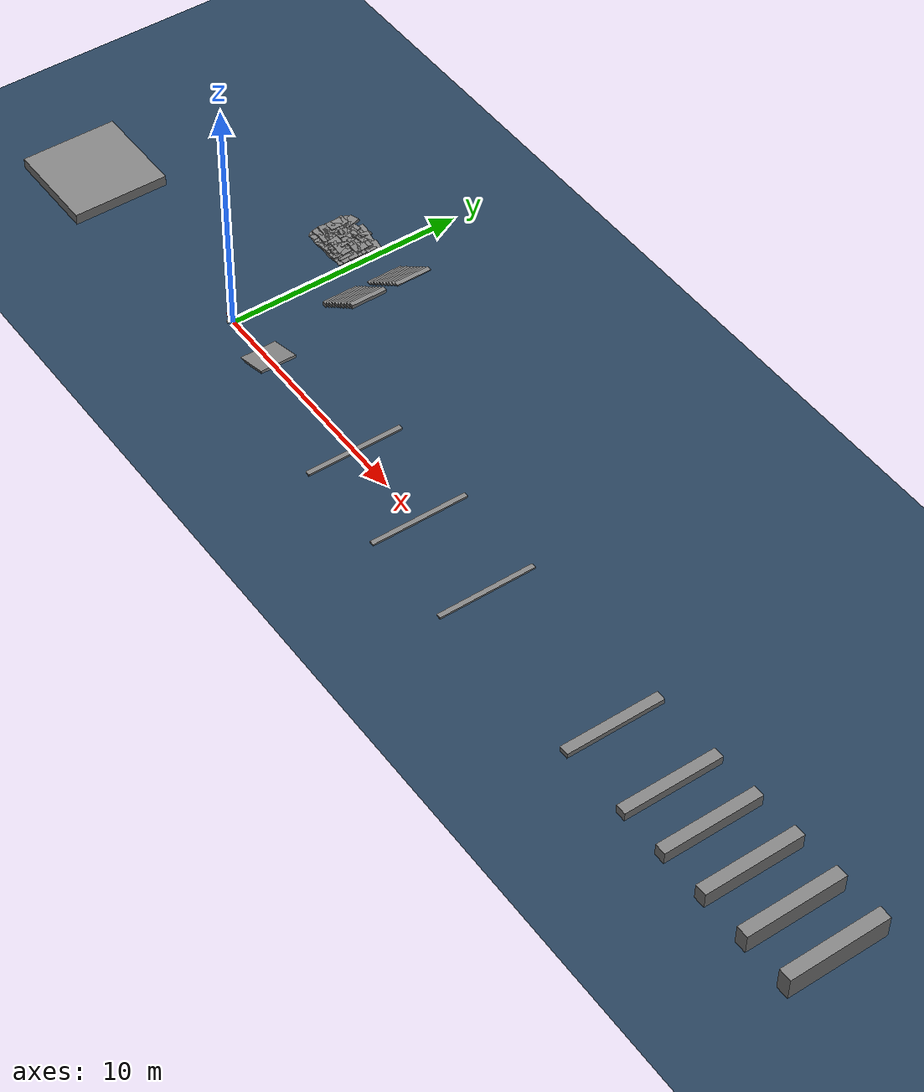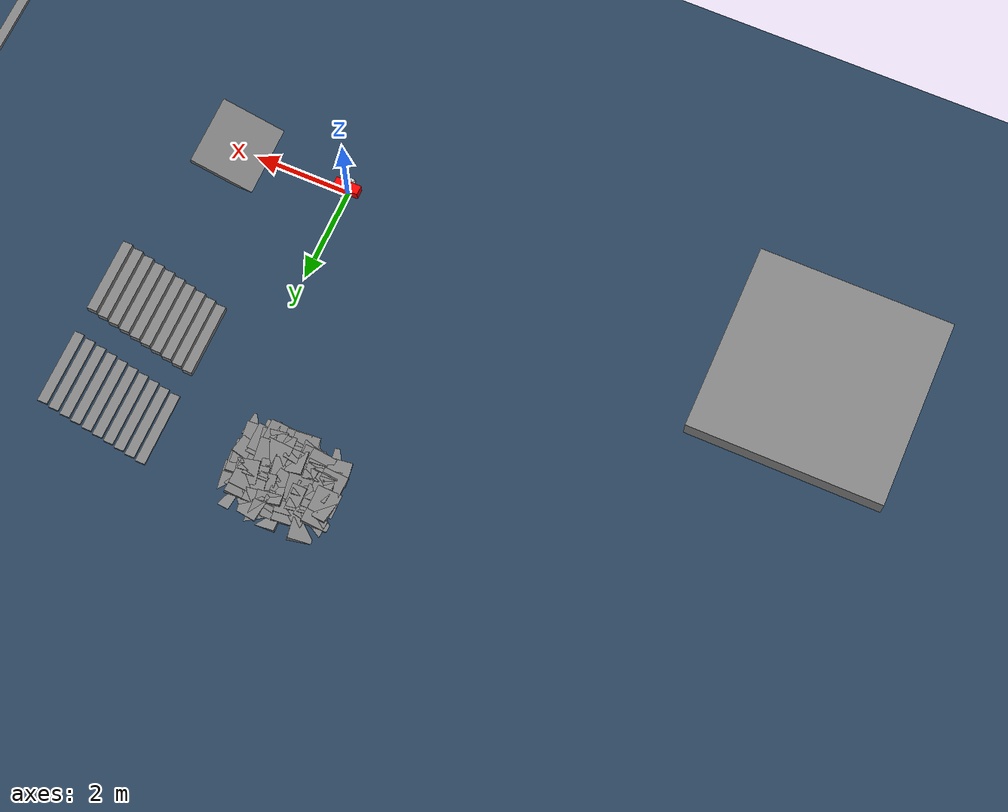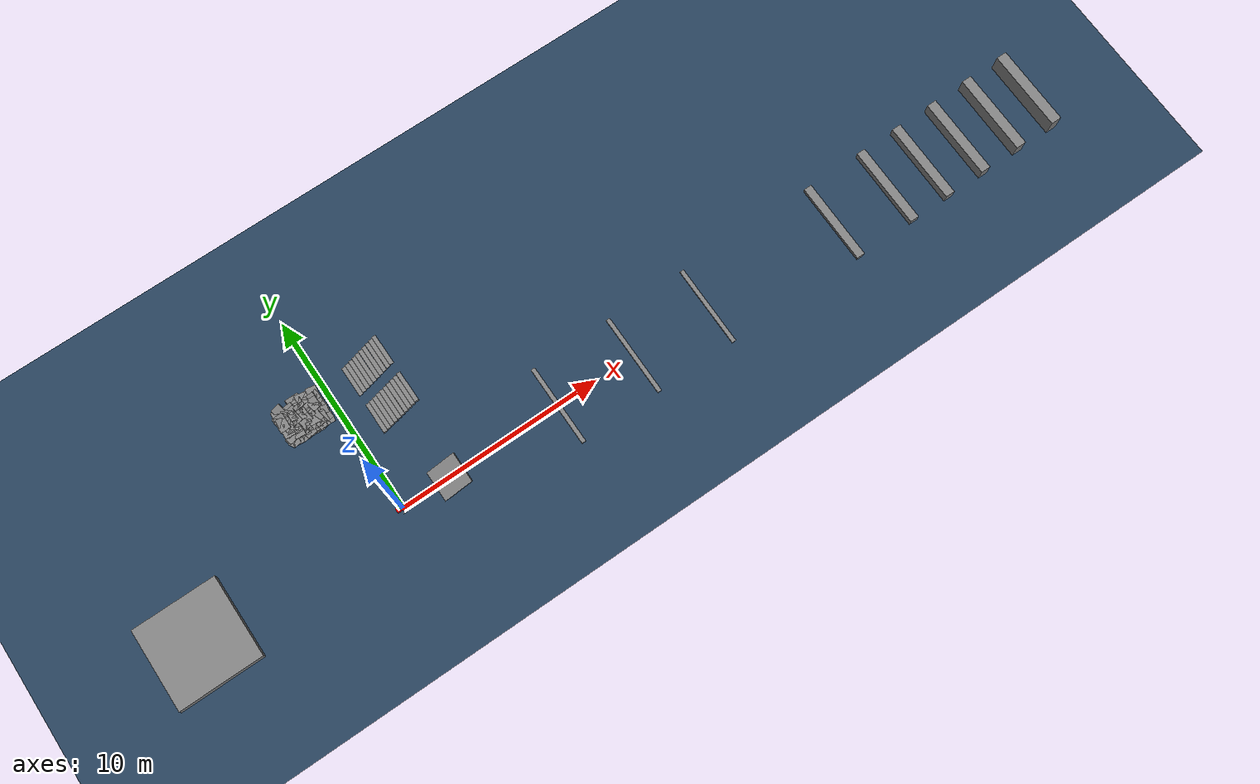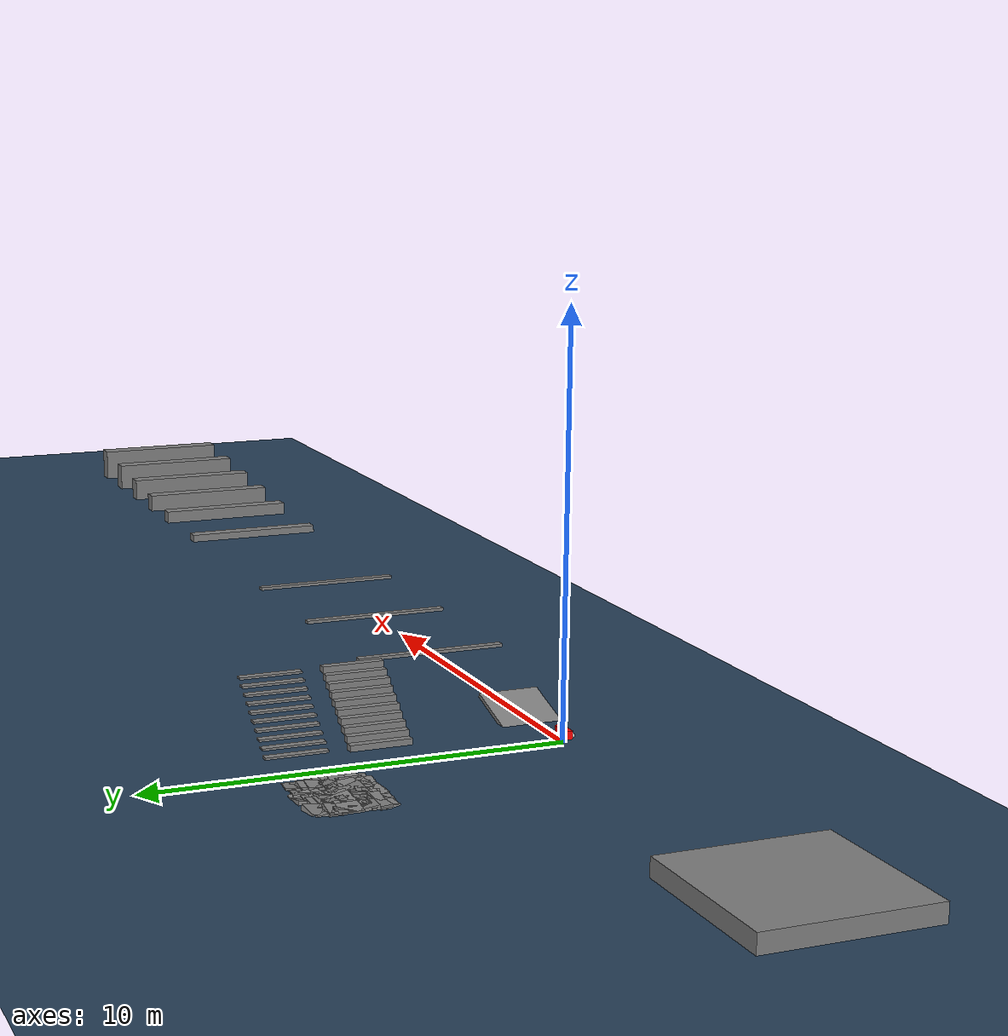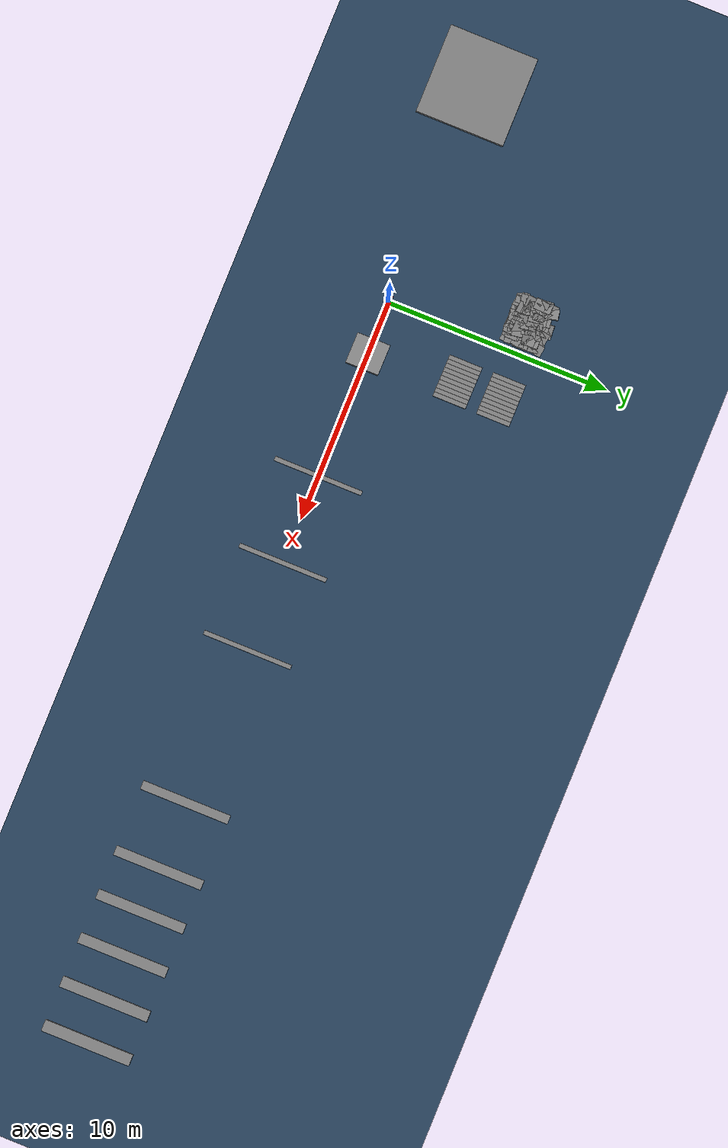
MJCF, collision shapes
<mujoco model="Infantry_wheelLegged scene">
  <include file="zt_2025_Infantry_wheelLeggedP_withShoot_s.xml" />

  <statistic center="0 0 0.4" extent="0.8" />

  <visual>
    <headlight diffuse="0.6 0.6 0.6" ambient="0.3 0.3 0.3" specular="0 0 0" />
    <rgba haze="0.15 0.25 0.35 1" />
    <global azimuth="-130" elevation="-20" />
  </visual>

  <asset>
    <texture type="skybox" builtin="gradient" rgb1="0.3 0.5 0.7" rgb2="0 0 0" width="512" height="3072" />
    <texture type="2d" name="groundplane" builtin="checker" mark="edge" rgb1="0.2 0.3 0.4" rgb2="0.1 0.2 0.3" markrgb="0.8 0.8 0.8" width="300" height="300" />
    <material name="groundplane" texture="groundplane" texuniform="true" texrepeat="5 5" reflectance="0.2" />
  </asset>

  <worldbody>
    <light pos="0 0 1.5" dir="0 0 -1" directional="true" />
    <geom name="floor" size="0 0 0.05" type="plane" material="groundplane" />

    <geom pos="-10 0 0.0" type="box" size="2 2 0.4" quat="1.0 0 0 0" />

    <geom pos="8 0 0.04" type="box" size="0.1 2 0.04" quat="1.0 0 0 0" />
    <geom pos="12 0 0.04" type="box" size="0.1 2 0.04" quat="1.0 0 0 0" />
    <geom pos="16 0 0.04" type="box" size="0.1 2 0.04" quat="1.0 0 0 0" />

    <geom pos="23 0 0.02" type="box" size="0.2 2 0.15" quat="1.0 0 0 0" />
    <geom pos="26 0 0.02" type="box" size="0.22 2 0.3" quat="1.0 0 0 0" />
    <geom pos="28 0 0.02" type="box" size="0.23 2 0.45" quat="1.0 0 0 0" />
    <geom pos="30 0 0.02" type="box" size="0.24 2 0.6" quat="1.0 0 0 0" />
    <geom pos="32 0 0.02" type="box" size="0.25 2 0.75" quat="1.0 0 0 0" />
    <geom pos="34 0 0.02" type="box" size="0.26 2 0.9" quat="1.0 0 0 0" />
  <geom pos="2.0 0.0 0" type="box" size="1.145 0.75 0.05" quat="0.9890163047784168 0.0 -0.14780645751267352 0.0" /><geom pos="1.2 4.0 0.075" type="box" size="0.1 0.75 0.075" quat="1.0 0.0 0.0 0.0" /><geom pos="1.4 4.0 0.22499999999999998" type="box" size="0.1 0.75 0.075" quat="1.0 0.0 0.0 0.0" /><geom pos="1.6 4.0 0.375" type="box" size="0.1 0.75 0.075" quat="1.0 0.0 0.0 0.0" /><geom pos="1.8 4.0 0.525" type="box" size="0.1 0.75 0.075" quat="1.0 0.0 0.0 0.0" /><geom pos="2.0 4.0 0.675" type="box" size="0.1 0.75 0.075" quat="1.0 0.0 0.0 0.0" /><geom pos="2.2 4.0 0.8250000000000001" type="box" size="0.1 0.75 0.075" quat="1.0 0.0 0.0 0.0" /><geom pos="2.4 4.0 0.9750000000000001" type="box" size="0.1 0.75 0.075" quat="1.0 0.0 0.0 0.0" /><geom pos="2.5999999999999996 4.0 1.125" type="box" size="0.1 0.75 0.075" quat="1.0 0.0 0.0 0.0" /><geom pos="2.8 4.0 1.275" type="box" size="0.1 0.75 0.075" quat="1.0 0.0 0.0 0.0" /><geom pos="3.0 4.0 1.4249999999999998" type="box" size="0.1 0.75 0.075" quat="1.0 0.0 0.0 0.0" /><geom pos="1.2 6.0 0.075" type="box" size="0.1 0.75 0.024999999999999994" quat="1.0 0.0 0.0 0.0" /><geom pos="1.4 6.0 0.22499999999999998" type="box" size="0.1 0.75 0.024999999999999994" quat="1.0 0.0 0.0 0.0" /><geom pos="1.6 6.0 0.375" type="box" size="0.1 0.75 0.024999999999999994" quat="1.0 0.0 0.0 0.0" /><geom pos="1.8 6.0 0.525" type="box" size="0.1 0.75 0.024999999999999994" quat="1.0 0.0 0.0 0.0" /><geom pos="2.0 6.0 0.675" type="box" size="0.1 0.75 0.024999999999999994" quat="1.0 0.0 0.0 0.0" /><geom pos="2.2 6.0 0.8250000000000001" type="box" size="0.1 0.75 0.024999999999999994" quat="1.0 0.0 0.0 0.0" /><geom pos="2.4 6.0 0.9750000000000001" type="box" size="0.1 0.75 0.024999999999999994" quat="1.0 0.0 0.0 0.0" /><geom pos="2.5999999999999996 6.0 1.125" type="box" size="0.1 0.75 0.024999999999999994" quat="1.0 0.0 0.0 0.0" /><geom pos="2.8 6.0 1.275" type="box" size="0.1 0.75 0.024999999999999994" quat="1.0 0.0 0.0 0.0" /><geom pos="3.0 6.0 1.4249999999999998" type="box" size="0.1 0.75 0.024999999999999994" quat="1.0 0.0 0.0 0.0" /><geom pos="-2.3022868107892727 5.214704116311592 -0.25" type="box" size="0.2436719359767003 0.27069798257729677 0.22962093003257714" quat="0.9957960554795479 0.021912967232619533 -0.05143000971006149 0.07256026364105017" /><geom pos="-2.3022868107892727 5.389739566453222 -0.25" type="box" size="0.22717440492893548 0.24595836226344375 0.2651116233470606" quat="0.9975889115509706 -0.018621650974577398 -0.005923770226420375 0.06659209121085974" /><geom pos="-2.3022868107892727 5.608457977379958 -0.25" type="box" size="0.25269099608229767 0.22694426852907376 0.27043285619906704" quat="0.9971318848698699 -0.06588603125150606 0.027461592560966468 -0.025157424268022477" /><geom pos="-2.3022868107892727 5.7972223457639265 -0.25" type="box" size="0.2460854036492611 0.2634228871590128 0.2387620913336293" quat="0.995869175302315 -0.07980140692519569 0.025046046139319194 0.0353414304780276" /><geom pos="-2.3022868107892727 6.020432266086905 -0.25" type="box" size="0.24803344636154245 0.24927788285979008 0.2712257275798103" quat="0.998330428649622 -0.01822268334031966 -0.0548064646940096 -0.000735167929901443" /><geom pos="-2.3022868107892727 6.209257089229494 -0.25" type="box" size="0.25921591828431 0.22928841696307448 0.2578970463860524" quat="0.9914774127183892 0.09351470067425573 0.06428814506988152 -0.0639888680203587" /><geom pos="-2.3022868107892727 6.364596328834738 -0.25" type="box" size="0.26797749469733817 0.24228854723689547 0.2640557977430339" quat="0.9930883627085202 0.09087849238899892 -0.07422344254820175 -0.0027356992355377276" /><geom pos="-2.3022868107892727 6.55146752656225 -0.25" type="box" size="0.2540399299462072 0.2528447081414222 0.23296547111446647" quat="0.9935350329050765 -0.09278300122703159 0.04724317100933647 -0.045249705707283976" /><geom pos="-2.1326427433325112 5.175083285083329 -0.25" type="box" size="0.24309135627365003 0.23879724977772387 0.22923781566865625" quat="0.9974855859733238 0.02566880518936263 -0.01230724418254965 -0.06490107823631558" /><geom pos="-2.1326427433325112 5.342400946261966 -0.25" type="box" size="0.27335479963511256 0.22818368389158894 0.25067169022412383" quat="0.9958680853907154 0.06631784972100448 0.01870174424394689 -0.059151872927632874" /><geom pos="-2.1326427433325112 5.574016218847386 -0.25" type="box" size="0.25575810518715386 0.23130312668185954 0.22617745237115733" quat="0.9940144552733466 0.031137323360767938 0.09943146074247011 0.032849876958331255" /><geom pos="-2.1326427433325112 5.803218001588724 -0.25" type="box" size="0.26178991445181327 0.25856328925923966 0.24039223854599923" quat="0.9963545917095112 0.03525152651367172 0.06315908106293301 -0.04523038731997413" /><geom pos="-2.1326427433325112 6.043448844492559 -0.25" type="box" size="0.2558577086539286 0.24015437150687036 0.2438019439695293" quat="0.994235826850187 0.0389148869893839 -0.09205277748638581 0.038820591638590946" /><geom pos="-2.1326427433325112 6.2693532247478245 -0.25" type="box" size="0.2331623876377687 0.2703493571684743 0.24582857547734704" quat="0.9944052973639341 0.03771854317184993 -0.03841910430408794 -0.0908811779193614" /><geom pos="-2.1326427433325112 6.514624653325625 -0.25" type="box" size="0.23682604850470312 0.257827406412281 0.23367045014221655" quat="0.9960683534431894 -0.07329189562360534 0.020733627695159074 0.04523549477424386" /><geom pos="-2.1326427433325112 6.759696033573189 -0.25" type="box" size="0.23266950474095485 0.22522447423270073 0.26512717053819057" quat="0.9875036315424146 0.09308303891073243 -0.08993146369034977 0.08991361073940618" /><geom pos="-1.9114939541189981 5.175528905218334 -0.25" type="box" size="0.25323897584594424 0.2713021272834143 0.23661241315776618" quat="0.994160133028725 0.08398475907395814 -0.02989381343076991 0.06081570568663752" /><geom pos="-1.9114939541189981 5.359532812607338 -0.25" type="box" size="0.2523465596728665 0.22647647342658714 0.2719604315342494" quat="0.9973477054949024 -0.051790194826699706 -0.02087632589247477 -0.04668521265986967" /><geom pos="-1.9114939541189981 5.5583856667704685 -0.25" type="box" size="0.26224616170118037 0.22743248620704706 0.23297434796840913" quat="0.9870863653486932 0.10446761869922258 -0.07433994338245338 0.09602393870235562" /><geom pos="-1.9114939541189981 5.7365499127833575 -0.25" type="box" size="0.2518153899306264 0.2722227501745631 0.26182070710836086" quat="0.9967842971979052 0.002879042562599575 -0.027150962772361807 -0.07533658602654425" /><geom pos="-1.9114939541189981 5.8921565810610765 -0.25" type="box" size="0.2690616914288365 0.26757768614219074 0.2545904430458561" quat="0.9960766634136303 0.07757039878276568 -0.024422831529634093 0.03489468635089364" /><geom pos="-1.9114939541189981 6.050880079896679 -0.25" type="box" size="0.23972373552524812 0.2744713876401259 0.22841761816776684" quat="0.9981804918895859 -0.038150126914533455 0.011569035765126015 0.04523749372958644" /><geom pos="-1.9114939541189981 6.226732544857801 -0.25" type="box" size="0.25111170405790045 0.23097739881666093 0.23801541183344274" quat="0.9932564928022554 0.08721255985719095 0.029676160412251643 0.0703905846864899" /><geom pos="-1.9114939541189981 6.4372970608636315 -0.25" type="box" size="0.2303998708452052 0.25196288604627537 0.2612917292031033" quat="0.9994028338029951 -0.019329142560420065 0.022611897640896737 -0.01758016266987953" /><geom pos="-1.7176083305044285 5.173648156874327 -0.25" type="box" size="0.2687165814915208 0.25116793689504413 0.2442896540644933" quat="0.9964949667443296 0.025680586072249097 -0.06490429641182553 0.04610554261137495" /><geom pos="-1.7176083305044285 5.374438805115074 -0.25" type="box" size="0.24190735508676717 0.2607398861013018 0.2408673166116883" quat="0.9947614925811817 -0.041361785028689764 -0.09250675621501446 0.013463865398754295" /><geom pos="-1.7176083305044285 5.542893652693271 -0.25" type="box" size="0.2374293348622522 0.24848676805270292 0.23066793744400024" quat="0.9988561593380896 0.04749642347313668 -0.005004188384695957 -0.0023282629215683557" /><geom pos="-1.7176083305044285 5.753977049728384 -0.25" type="box" size="0.2596768707648882 0.26592355644053234 0.23600950784992336" quat="0.994717517098907 -0.03814015633187737 0.06812171569865694 -0.0666469916938259" /><geom pos="-1.7176083305044285 5.9586235407143135 -0.25" type="box" size="0.23793849235622141 0.2570801064151832 0.27101434738902386" quat="0.9925957133947109 -0.07230742298290095 -0.06477559556896578 0.07300348314089451" /><geom pos="-1.7176083305044285 6.1556777908848614 -0.25" type="box" size="0.23857607556193858 0.2601014276979313 0.2668332401838594" quat="0.9951785891607916 -0.07501801387028441 0.06148814469380205 -0.014528638374201094" /><geom pos="-1.7176083305044285 6.327825459336108 -0.25" type="box" size="0.27468201640971224 0.27079841124772946 0.22838596303364384" quat="0.9917899578334949 0.08689194696750067 -0.05367898785579767 0.07694826414941855" /><geom pos="-1.7176083305044285 6.5252119133299145 -0.25" type="box" size="0.23560272721011669 0.25093856973028217 0.2523529974216912" quat="0.9927096943000114 0.08020201550676201 -0.06557670373465473 0.06160191132366325" /><geom pos="-1.4825617994428155 5.158163375974578 -0.25" type="box" size="0.2541267237409497 0.24852161101958023 0.2542583201125818" quat="0.9955122457282654 -0.05891521612052827 -0.03527343047990172 0.06511644198447032" /><geom pos="-1.4825617994428155 5.3500445011396165 -0.25" type="box" size="0.256338172018805 0.24222685266172397 0.2665745227241127" quat="0.9956910497270048 0.04914503265572207 -0.02559760799758907 -0.07435631596310337" /><geom pos="-1.4825617994428155 5.54297871317267 -0.25" type="box" size="0.24255408454624255 0.24112966578472686 0.27107145069748384" quat="0.9925535420339853 0.0367162721504249 0.09972573152656844 0.05953284829954569" /><geom pos="-1.4825617994428155 5.781441255496872 -0.25" type="box" size="0.23514825820951493 0.26546154490703144 0.2377253508312194" quat="0.9995290544466204 0.028401035769551525 -0.010999437882108951 -0.0037500467382441255" /><geom pos="-1.4825617994428155 6.005226752002489 -0.25" type="box" size="0.24549292530090802 0.24650084281312618 0.265825267751337" quat="0.9935888249858819 -0.06823830828859079 0.0014426643805744562 -0.09012601657995722" /><geom pos="-1.4825617994428155 6.243323815116537 -0.25" type="box" size="0.26463438870822237 0.26208827727242623 0.2415532272594212" quat="0.9940338160646189 0.04874242365599243 -0.09719819148744167 -0.008570894219486692" /><geom pos="-1.4825617994428155 6.475932472269779 -0.25" type="box" size="0.22851678454684846 0.26632903052130447 0.25290711162724155" quat="0.9968423349894254 -0.014726968984261849 -0.06964701389993934 0.03518194156365232" /><geom pos="-1.4825617994428155 6.725830051289654 -0.25" type="box" size="0.25705000673608197 0.2598450655262253 0.2302061417924846" quat="0.9927427139812154 0.06973477723287665 0.09522314260392303 0.02305466968154208" /><geom pos="-1.3272920155724752 5.16037369326968 -0.25" type="box" size="0.24894572688642042 0.2504567986391228 0.2498744892663536" quat="0.9961612223891632 -0.07001322293001841 -0.010445316013152474 0.051496242547055496" /><geom pos="-1.3272920155724752 5.358479597196076 -0.25" type="box" size="0.27210927069433144 0.244553046118832 0.24536255526942777" quat="0.9927097549772398 -0.06753161980082495 -0.05387710348081013 -0.08404808397948976" /><geom pos="-1.3272920155724752 5.562091392829414 -0.25" type="box" size="0.24325456802622658 0.2739228314698469 0.26875328098704976" quat="0.9991974141811254 -0.035955034854527945 -0.0003800499443264515 -0.01765272002842276" /><geom pos="-1.3272920155724752 5.7843814969914265 -0.25" type="box" size="0.23490288855106786 0.23975967688221858 0.2650445574536099" quat="0.9947733445991842 0.014235347001352806 -0.049883128809675444 0.08794896947014942" /><geom pos="-1.3272920155724752 6.02947627495023 -0.25" type="box" size="0.2749789934370549 0.26974449624048624 0.24114501979311143" quat="0.9977187485602832 -0.04443867948165445 0.05081346322706702 0.0007032013229749325" /><geom pos="-1.3272920155724752 6.278103850243639 -0.25" type="box" size="0.2702342066707214 0.26775219584387 0.26069660688125296" quat="0.9904773596566897 0.08961656299132777 0.07198146423611039 0.07577691239130592" /><geom pos="-1.3272920155724752 6.468449786819129 -0.25" type="box" size="0.23937511399521186 0.2405635026298996 0.26525499352725906" quat="0.9930009640367502 -0.09312952932819175 -0.012837343971069018 0.07149250862127432" /><geom pos="-1.3272920155724752 6.698678309133562 -0.25" type="box" size="0.273226875180169 0.24023158572699443 0.24969944612580416" quat="0.9942046033328177 -0.09000492673340439 -0.05832364752242255 -0.007394052693171835" /><geom pos="-1.081744291880962 5.1755138718651 -0.25" type="box" size="0.22701396236537968 0.23898366111441305 0.24683929340137786" quat="0.997071968800416 0.06930861828474823 -0.0009420985297057846 -0.0322942241628737" /><geom pos="-1.081744291880962 5.360090163533284 -0.25" type="box" size="0.2574449000569849 0.26584717305790917 0.2716465853398833" quat="0.9990668012356796 -0.03259386994065482 0.01317250088909124 0.025092858173697826" /><geom pos="-1.081744291880962 5.5302743850949545 -0.25" type="box" size="0.2606445207864196 0.2644522799362593 0.2693652430189034" quat="0.9974802239858374 -0.05630093092209127 0.03191091607288831 -0.029070627269785796" /><geom pos="-1.081744291880962 5.771619177919802 -0.25" type="box" size="0.2349379319997961 0.24403178659433206 0.24438405729105347" quat="0.9934982017654158 0.040696520876198745 -0.06695725852548033 0.08259444175130716" /><geom pos="-1.081744291880962 5.986697078931473 -0.25" type="box" size="0.27265146266039414 0.2279568319807574 0.2252311440927979" quat="0.9932545696047006 -0.08613847239840601 -0.018362305339491774 0.07542114607236566" /><geom pos="-1.081744291880962 6.159819780789984 -0.25" type="box" size="0.267385380354592 0.2609164465100108 0.2522638429639368" quat="0.9925605057158186 -0.09984671763748597 0.040822801782861504 0.05646037836196297" /><geom pos="-1.081744291880962 6.402112611036314 -0.25" type="box" size="0.2574167376830733 0.22827987066883684 0.22909581512439686" quat="0.9960860205180636 0.06854383617326826 -0.05462124824068129 0.01144121898093188" /><geom pos="-1.081744291880962 6.624440040920707 -0.25" type="box" size="0.2642652207209378 0.24105010971161384 0.26319651461598065" quat="0.9948534779278727 -0.013781568831100221 0.06627441013710024 -0.07539448505261358" /><geom pos="-0.9053886257212889 5.175735397155652 -0.25" type="box" size="0.2418305041189834 0.2522904987830924 0.2624859761845608" quat="0.9968447572173729 -0.03275362898560734 -0.0719356052640908 -0.007280006304881773" /><geom pos="-0.9053886257212889 5.3324728302834 -0.25" type="box" size="0.2564797527374174 0.26433608117451124 0.2565687305078263" quat="0.9947354876466372 -0.07091240987950857 -0.00554376094057024 0.07376995632451717" /><geom pos="-0.9053886257212889 5.549524260693435 -0.25" type="box" size="0.2559711742091085 0.24462219640534338 0.26184898522953226" quat="0.9947423442388159 -0.011939782207040516 -0.07795484182353898 0.06533110144012955" /><geom pos="-0.9053886257212889 5.745881289087535 -0.25" type="box" size="0.2513644961701741 0.2556622043566045 0.23586971281700334" quat="0.9969712523364885 0.03924682344620872 0.03624991761373043 0.0565150629212567" /><geom pos="-0.9053886257212889 5.918329039521145 -0.25" type="box" size="0.26384860804367216 0.23880430453503648 0.25345901394922243" quat="0.9969489396052655 0.07019885574853765 0.03080136512179917 0.014704025916941164" /><geom pos="-0.9053886257212889 6.104091922193753 -0.25" type="box" size="0.25939624455497107 0.2611646109457898 0.2681836321303156" quat="0.9946828292834122 -0.053255675003574775 0.03754088885412095 0.07975326872738384" /><geom pos="-0.9053886257212889 6.344300663837356 -0.25" type="box" size="0.26779955389849613 0.2566170513273606 0.22597432089464137" quat="0.9973503840421178 0.0046453514431647434 0.05034009087459776 -0.05231163744088628" /><geom pos="-0.9053886257212889 6.571891611381168 -0.25" type="box" size="0.23277511511280966 0.24114005547807077 0.24764907631666766" quat="0.9959963198005893 -0.035492400839560206 0.0484781949988568 0.06619278688784112" /><geom pos="-0.708243374470058 5.179578657670395 -0.25" type="box" size="0.2641065569363449 0.22878254863895978 0.2423510026253787" quat="0.9946035234596315 0.0015148284079257853 0.07582323896585479 0.07079811331742948" /><geom pos="-0.708243374470058 5.370185610334738 -0.25" type="box" size="0.23072118529420974 0.2697452157072246 0.24774020162536897" quat="0.9984500379864674 -0.0018192875342743255 -0.054853648464054806 -0.009235209140644051" /><geom pos="-0.708243374470058 5.534992296364211 -0.25" type="box" size="0.22931255947536855 0.23113402830993457 0.23074567892080072" quat="0.9960549502705297 0.07395421618474977 -0.019942029351208142 -0.04480653317795986" /><geom pos="-0.708243374470058 5.701084582983899 -0.25" type="box" size="0.2547899064166158 0.23596351154876935 0.24353517685063206" quat="0.9934507816599452 0.034774833252598565 -0.04366927773831883 0.09969578513313286" /><geom pos="-0.708243374470058 5.859197327911351 -0.25" type="box" size="0.2706931560568665 0.24309189571496892 0.23318613017550063" quat="0.9923784067835659 0.09406104767821459 -0.010842298201075521 0.07886736732709446" /><geom pos="-0.708243374470058 6.030154675350155 -0.25" type="box" size="0.2691332534607382 0.23607440636048066 0.26452976725301425" quat="0.9887513733182326 -0.08084848975904126 0.07866981384397459 0.09821050786318937" /><geom pos="-0.708243374470058 6.197843924969072 -0.25" type="box" size="0.24909926270337712 0.25199836646512175 0.25758933202003953" quat="0.9956637007053345 0.05344999291608833 -0.07594980678563545 -0.005340431092449393" /><geom pos="-0.708243374470058 6.367854160158713 -0.25" type="box" size="0.2681475565756259 0.2694694429112891 0.2470027102693388" quat="0.9922449307796194 0.07772464671263862 -0.09630064804025915 0.011621610153925389" /><geom pos="-0.522089135136848 5.2118410204143615 -0.25" type="box" size="0.23346484421478939 0.2360359077661526 0.23342625626936928" quat="0.9973820670075915 0.020948501380450082 -0.031692322508815145 -0.0615286063191344" /><geom pos="-0.522089135136848 5.3766586657400035 -0.25" type="box" size="0.24037004326329464 0.2558165801001191 0.24404385562221154" quat="0.9959917242298133 0.0023126346803877965 -0.06144246436354686 0.06496122350674385" /><geom pos="-0.522089135136848 5.610212275006528 -0.25" type="box" size="0.2394214291992257 0.26257185456559967 0.25461868248515357" quat="0.9927263109057628 0.04400145770908817 -0.06349077731187784 -0.09234318898134113" /><geom pos="-0.522089135136848 5.765106583024909 -0.25" type="box" size="0.266398771926113 0.24499280762569794 0.2371531792324131" quat="0.9954391180215841 0.011651319777519854 -0.0771623416510794 0.054874238862827926" /><geom pos="-0.522089135136848 5.9664035633585835 -0.25" type="box" size="0.27494235224494284 0.2293427454838268 0.24356632627399954" quat="0.9949111254052782 0.03220679465349495 -0.07069481064985803 0.06416243971461097" /><geom pos="-0.522089135136848 6.200911811561505 -0.25" type="box" size="0.24905453292872218 0.22607258835475583 0.24251423060163674" quat="0.9979536700474904 -0.009580949993672361 -0.0006723976543641719 0.0632157078371976" /><geom pos="-0.522089135136848 6.414836415876459 -0.25" type="box" size="0.22582419371575688 0.2283413287545891 0.22969299741255564" quat="0.9960442684674463 -0.0330164568753913 -0.036639923943205345 0.0739137659842951" /><geom pos="-0.522089135136848 6.611046758403505 -0.25" type="box" size="0.24231063353263943 0.2633602704480063 0.22833866188116383" quat="0.9976090462948928 0.012425676180938806 0.03751236529862874 -0.05669758170983066" /></worldbody>
</mujoco>

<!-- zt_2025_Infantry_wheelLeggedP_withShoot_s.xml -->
<mujoco model="RMInfantry_Complation_Vision.SLDASM">
  <compiler angle="radian" meshdir="../meshes/"/>

  <default>
    <default class="RMInfantry_wheelLegged">
      <geom type="mesh"/>
      <joint damping="1" armature="0.1"/>
      <default class="visual">
        <geom contype="0" conaffinity="0" group="2"/>
      </default>
      <default class="collision">
        <geom group="3" mass="0" density="0"/>
      </default>
      <default class="collision1">
        <geom group="4" mass="0" density="0"/>
      </default>
      <site size="0.001" rgba="0.5 0.5 0.5 0.3" group="4"/>
    </default>
  </default>

  <default>
    <default class='hip_joint'>
        <joint damping="0.035" frictionloss="0.023" armature="0.0"/>
    </default>
    <default class='wheel_joint'>
        <joint damping="0.01" frictionloss="0.05" armature="0.0"/>
    </default>
    <default class='gimbal_pitch_joint'>
        <joint damping="0.004" frictionloss="0.016" armature="0.0"/>
    </default>
    <default class='gimbal_yaw_joint'>
        <joint damping="0.012" frictionloss="0.009" armature="0.0"/>
    </default>
    <default class='frition_wheel_joint'>
        <joint damping="0.002" frictionloss="0.009" armature="0.0"/>
    </default>
    <default class='feeder_desk_joint'>
        <joint damping="0.002" frictionloss="0.009" armature="0.0"/>
    </default>
  </default>

  <default>
    <default class='Motorevo_PA100_motor'>
        <motor ctrlrange="-50 50"/>
    </default>
    <default class='KTECH_MF9025V2_motor'>
        <motor ctrlrange="-10 10"/>
    </default>
    <default class='DJI_GM6020_motor'>
        <motor ctrlrange="-5 5"/>
    </default>
    <default class='DJI_M2006_motor'>
        <motor ctrlrange="-5 5"/>
    </default>
    <default class='DJI_M3508_motor'>
        <motor ctrlrange="-10 10"/>
    </default>
  </default>

  <asset>
    <mesh name="base_link" file="base_link.obj"/>
    <mesh name="left_front_hip_link" file="left_front_hip_link.STL"/>
    <mesh name="left_front_knee_link" file="left_front_knee_link.STL"/>
    <mesh name="left_rear_hip_link" file="left_rear_hip_link.STL"/>
    <mesh name="left_rear_knee_link" file="left_rear_knee_link.STL"/>
    <mesh name="left_chassis_wheel_link" file="left_chassis_wheel_link.STL"/>
    <mesh name="right_front_hip_link" file="right_front_hip_link.STL"/>
    <mesh name="right_front_knee_link" file="right_front_knee_link.STL"/>
    <mesh name="right_rear_hip_link" file="right_rear_hip_link.STL"/>
    <mesh name="right_rear_knee_link" file="right_rear_knee_link.STL"/>
    <mesh name="right_chassis_wheel_link" file="right_chassis_wheel_link.STL"/>
    <mesh name="gimbal_yaw_link" file="gimbal_yaw_link.STL"/>
    <mesh name="gimbal_pitch_motor_link" file="gimbal_pitch_motor_link.STL"/>
    <mesh name="gimbal_pitch_motor_chrild1_link" file="gimbal_pitch_motor_chrild1_link.STL"/>
    <mesh name="gimbal_pitch_motor_chrild2_link" file="gimbal_pitch_motor_chrild2_link.STL"/>
    <mesh name="gimbal_pitch_link" file="gimbal_pitch_link.STL"/>
    <mesh name="left_frition_wheel_link" file="left_frition_wheel_link.STL"/>
    <mesh name="right_frition_wheel_link" file="right_frition_wheel_link.STL"/>
    <mesh name="feeder_desk_link" file="feeder_desk_link.STL"/>
  </asset>

  <worldbody>
    <body name="base_link" pos="0 0 0.15" childclass="RMInfantry_wheelLegged">
      <inertial pos="-0.003111 0.0015208 0.10627" quat="0.00205399 0.707016 0.00191127 0.707192" mass="16.7749" diaginertia="0.0548401 0.0519599 0.018047"/>
      <joint name="floating_base_joint" type="free"/>
      <geom type="mesh" contype="0" conaffinity="0" group="1" density="0" rgba="0.50196 0.50196 0.50196 1" mesh="base_link"/>
      <geom type="box"  size="0.265 0.1 0.1" pos="0 0 0.1" rgba="1 0.0 0.0 1"  class="collision"/>
      <site name="imu" pos="0 0 0"/>
      <body name="left_front_hip_link" pos="0.065 0.1423 0.127">
        <inertial pos="0.032281 0.032438 0.011151" quat="0.574502 0.412247 0.412247 0.574502" mass="0.252798" diaginertia="0.00064137 0.000572305 8.22754e-05"/>
        <joint name="left_front_hip_joint" pos="0 0 0" axis="0 1 0" range="0 1.48353" class='hip_joint'/>
        <geom type="mesh" contype="0" conaffinity="0" group="1" density="0" rgba="0.89804 0.91373 0.92549 1" mesh="left_front_hip_link"/>
        <body name="left_front_knee_link" pos="0.12968 0.0194 0.047199">
          <inertial pos="-0.089345 0.006 -0.086713" quat="0.646507 0.286406 0.286406 0.646507" mass="0.219372" diaginertia="0.0018691 0.00181967 5.46815e-05"/>
          <joint name="left_front_knee_joint" pos="0 0 0" axis="0 1 0"/>

          <site name="left_front_knee_site1" pos="-0.19468 0.0245 -0.17534" size="0.005" rgba="1 0 0 1"/>

          <geom type="mesh" contype="0" conaffinity="0" group="1" density="0" rgba="1 1 1 1" mesh="left_front_knee_link"/>
        </body>
      </body>
      <body name="left_rear_hip_link" pos="-0.065 0.1423 0.127">
        <inertial pos="-0.0369979 0.0309983 0.0127966" quat="0.410443 0.575792 0.575792 0.410443" mass="0.25817" diaginertia="0.000715454 0.00064611 8.05428e-05"/>
        <joint name="left_rear_hip_joint" pos="0 0 0" axis="0 1 0" range="-1.48353 0" class='hip_joint'/>
        <geom type="mesh" contype="0" conaffinity="0" group="1" density="0" rgba="0.898039 0.913725 0.92549 1" mesh="left_rear_hip_link"/>
        <body name="left_rear_knee_link" pos="-0.12968 0.0309 0.047199">
          <inertial pos="0.10163 0.02 -0.097327" quat="0.28954 0.64511 0.64511 0.28954" mass="0.221401" diaginertia="0.0021043 0.00201488 9.47394e-05"/>
          <joint name="left_rear_knee_joint" pos="0 0 0" axis="0 1 0"/>
          <geom type="mesh" contype="0" conaffinity="0" group="1" density="0" rgba="1 1 1 1" mesh="left_rear_knee_link"/>
          <body name="left_chassis_wheel_link" pos="0.19468 0.013 -0.17534">
            <inertial pos="-5.5954e-06 0.036068 -3.5474e-06" quat="0.270622 0.653296 0.653256 0.270601" mass="1.24506" diaginertia="0.0011204 0.000600313 0.000600287"/>
            <joint name="left_chassis_wheel_joint" pos="0 0 0" axis="0 1 0" class='wheel_joint'/>
            <site name="left_chassis_wheel_site1" pos="0 0 0" size="0.005" rgba="1 0 0 1"/>
            <geom type="mesh" contype="0" conaffinity="0" group="1" density="0" rgba="1 1 1 1" mesh="left_chassis_wheel_link"/>
            <geom type="mesh" rgba="1 1 1 1" mesh="left_chassis_wheel_link" class="collision"/>
          </body>
        </body>
      </body>
      <body name="right_front_hip_link" pos="0.065 -0.1423 0.127">
        <inertial pos="0.032281 -0.032438 0.011151" quat="0.574502 0.412247 0.412247 0.574502" mass="0.252798" diaginertia="0.00064137 0.000572305 8.22754e-05"/>
        <joint name="right_front_hip_joint" pos="0 0 0" axis="0 -1 0" range="-1.48353 0" class='hip_joint'/>
        <geom type="mesh" contype="0" conaffinity="0" group="1" density="0" rgba="1 1 1 1" mesh="right_front_hip_link"/>
        <body name="right_front_knee_link" pos="0.12968 -0.0194 0.047199">
          <inertial pos="-0.089345 -0.006 -0.086713" quat="0.646507 0.286406 0.286406 0.646507" mass="0.219372" diaginertia="0.0018691 0.00181967 5.46815e-05"/>
          <joint name="right_front_knee_joint" pos="0 0 0" axis="0 -1 0"/>
          <site name="right_front_knee_site1" pos="-0.19468 -0.0245 -0.17534" size="0.005" rgba="1 0 0 1"/>
          <geom type="mesh" contype="0" conaffinity="0" group="1" density="0" rgba="1 1 1 1" mesh="right_front_knee_link"/>
        </body>
      </body>
      <body name="right_rear_hip_link" pos="-0.065 -0.1423 0.127">
        <inertial pos="-0.036998 -0.030998 0.012797" quat="0.410444 0.575791 0.575791 0.410444" mass="0.25817" diaginertia="0.00071545 0.000646109 8.0541e-05"/>
        <joint name="right_rear_hip_joint" pos="0 0 0" axis="0 -1 0" range="0 1.48353" class='hip_joint'/>
        <geom type="mesh" contype="0" conaffinity="0" group="1" density="0" rgba="0.89804 0.91373 0.92549 1" mesh="right_rear_hip_link"/>
        <body name="right_rear_knee_link" pos="-0.12968 -0.0309 0.047199">
          <inertial pos="0.10163 -0.02 -0.097327" quat="0.28954 0.64511 0.64511 0.28954" mass="0.221401" diaginertia="0.0021043 0.00201488 9.47394e-05"/>
          <joint name="right_rear_knee_joint" pos="0 0 0" axis="0 -1 0"/>
          <geom type="mesh" contype="0" conaffinity="0" group="1" density="0" rgba="1 1 1 1" mesh="right_rear_knee_link"/>
          <body name="right_chassis_wheel_link" pos="0.19468 -0.013 -0.17534">
            <inertial pos="1.7764e-06 -0.036068 6.3825e-06" quat="0.402989 0.581024 0.581013 0.403032" mass="1.24506" diaginertia="0.0011204 0.000600313 0.000600287"/>
            <joint name="right_chassis_wheel_joint" pos="0 0 0" axis="0 -1 0" class='wheel_joint'/>
            <site name="right_chassis_wheel_site1" pos="0 0 0" size="0.005" rgba="1 0 0 1"/>
            <geom type="mesh" contype="0" conaffinity="0" group="1" density="0" rgba="1 1 1 1" mesh="right_chassis_wheel_link"/>
            <geom type="mesh" rgba="1 1 1 1" mesh="right_chassis_wheel_link" class="collision"/>
          </body>
        </body>
      </body>
      <body name="gimbal_yaw_link" pos="0 0 0.179">
        <inertial pos="0.0063949 0.01356 0.072584" quat="0.414713 0.909952 0.000280505 0.000204462" mass="0.702233" diaginertia="0.0011712 0.000967244 0.000603176"/>
        <joint name="gimbal_yaw_joint" pos="0 0 0" axis="0 0 1" class='gimbal_yaw_joint'/>
        <geom type="mesh" contype="0" conaffinity="0" group="1" density="0" rgba="1 1 1 1" mesh="gimbal_yaw_link"/>
        <body name="gimbal_pitch_motor_link" pos="0 0.04735 0.068">
          <inertial pos="-0.00079938 0.00028082 -0.00010689" quat="0.500644 0.499443 0.503381 0.496508" mass="0.489288" diaginertia="0.000164044 0.000103996 9.58677e-05"/>
          <joint name="gimbal_pitch_motor_joint" pos="0 0 0" axis="0 1 0" class='gimbal_pitch_joint'/>
          <geom type="mesh" contype="0" conaffinity="0" group="1" density="0" rgba="0.89412 0.9098 0.92549 1" mesh="gimbal_pitch_motor_link"/>
          <body name="gimbal_pitch_motor_chrild1_link" pos="-0.05 0.02585 0">
            <inertial pos="5.30454e-05 0.00258291 0.0325818" quat="0.704475 -0.00054886 0.00288271 0.709723" mass="0.0139252" diaginertia="8.65307e-06 8.23512e-06 4.85241e-07"/>
            <joint name="gimbal_pitch_motor_chrild1_joint" pos="0 0 0" axis="0 1 0"/>
            <site name="gimbal_pitch_motor_chrild1_site1" pos="0 -0.00285 0.067" size="0.005" rgba="1 0 0 1"/>
            <geom type="mesh" contype="0" conaffinity="0" group="1" density="0" rgba="0.50196 0.50196 0.50196 1" mesh="gimbal_pitch_motor_chrild1_link"/>
            <geom pos="0 -0.00285 0.067" quat="1 0 0 0" type="mesh" contype="0" conaffinity="0" group="1" density="0" rgba="0.772549 0.752941 0.733333 1" mesh="gimbal_pitch_motor_chrild2_link"/>
          </body>
        </body>
        <body name="gimbal_pitch_link" pos="0 0.043 0.135">
          <inertial pos="0.00570445 -0.0357203 0.0241585" quat="-0.00263437 0.642914 0.00278066 0.765929" mass="2.23648" diaginertia="0.00233617 0.00190761 0.00110017"/>
          <joint name="gimbal_pitch_joint" pos="0 0 0" axis="0 1 0" range="-0.43633 0.43633"/>
          <site name="gimbal_pitch_site1" pos="-0.05 0.02735 0.0" size="0.005" rgba="1 0 0 1"/>
          <geom type="mesh" contype="0" conaffinity="0" group="1" density="0" rgba="1 1 1 1" mesh="gimbal_pitch_link"/>
          <body name="left_frition_wheel_link" pos="0.07 -0.006 0.0161">
            <inertial pos="0 0 -0.0096337" quat="0.445654 0.548993 -0.445654 0.548993" mass="0.0352426" diaginertia="2.16795e-05 1.22606e-05 1.21007e-05"/>
            <joint name="left_frition_wheel_joint" pos="0 0 0" axis="0 0 1" class='frition_wheel_joint'/>
            <geom type="mesh" contype="0" conaffinity="0" group="1" density="0" rgba="1 1 1 1" mesh="left_frition_wheel_link"/>
          </body>
          <body name="right_frition_wheel_link" pos="0.07 -0.08 0.0161">
            <inertial pos="0 0 -0.0096337" quat="0.445654 0.548993 -0.445654 0.548993" mass="0.0352426" diaginertia="2.16795e-05 1.22606e-05 1.21007e-05"/>
            <joint name="right_frition_wheel_joint" pos="0 0 0" axis="0 0 1" class='frition_wheel_joint'/>
            <geom type="mesh" contype="0" conaffinity="0" group="1" density="0" rgba="1 1 1 1" mesh="right_frition_wheel_link"/>
          </body>
        </body>
      </body>
      <body name="feeder_desk_link" pos="0 0 0.076">
        <inertial pos="1.8898e-08 -8.1704e-09 -0.0047462" quat="0.270598 0.653281 -0.270598 0.653281" mass="0.069902" diaginertia="0.00014644 7.3556e-05 7.3556e-05"/>
        <joint name="feeder_desk_joint" pos="0 0 0" axis="0 0 1" class='feeder_desk_joint'/>
        <geom type="mesh" contype="0" conaffinity="0" group="1" density="0" rgba="1 1 1 1" mesh="feeder_desk_link"/>
      </body>
    </body>
  </worldbody>

  <equality>
      <connect name="Left_loop1" site1="left_front_knee_site1" site2="left_chassis_wheel_site1" solref="0.001 1" solimp="0.99 0.99 0.01 0.5 2"/>
      <connect name="Right_loop1" site1="right_front_knee_site1" site2="right_chassis_wheel_site1" solref="0.001 1" solimp="0.99 0.99 0.01 0.5 2"/>
      <connect name="Gimbal_pitch_loop1" site1="gimbal_pitch_motor_chrild1_site1" site2="gimbal_pitch_site1" solref="0.001 1" solimp="0.99 0.99 0.01 0.5 2"/>
  </equality>

  <actuator>
      <!-- 底盘机构电机 -->
      <motor name="left_front_hip_motor" joint="left_front_hip_joint" gear="1" ctrllimited="true"  class='Motorevo_PA100_motor'/>
      <motor name="left_rear_hip_motor"  joint="left_rear_hip_joint"  gear="1" ctrllimited="true"  class='Motorevo_PA100_motor'/>
      <motor name="left_chassis_wheel_motor" joint="left_chassis_wheel_joint" gear="1" ctrllimited="true" class='KTECH_MF9025V2_motor'/>
      <motor name="right_front_hip_motor" joint="right_front_hip_joint" gear="1" ctrllimited="true" class='Motorevo_PA100_motor'/>
      <motor name="right_rear_hip_motor"  joint="right_rear_hip_joint"  gear="1" ctrllimited="true" class='Motorevo_PA100_motor'/>
      <motor name="right_chassis_wheel_motor" joint="right_chassis_wheel_joint" gear="1" ctrllimited="true" class='KTECH_MF9025V2_motor'/>
      <!-- 云台机构电机 -->
      <motor name="gimbal_yaw_motor"  joint="gimbal_yaw_joint" gear="1" ctrllimited="true" class='DJI_GM6020_motor'/>
      <motor name="gimbal_pitch_motor"  joint="gimbal_pitch_motor_joint" gear="1" ctrllimited="true" class='DJI_GM6020_motor'/>
      <!-- 发射机构电机 -->
      <motor name="left_frition_wheel_motor"  joint="left_frition_wheel_joint" gear="1" ctrllimited="true" class='DJI_M3508_motor'/>
      <motor name="right_frition_wheel_motor"  joint="right_frition_wheel_joint" gear="1" ctrllimited="true" class='DJI_M3508_motor'/>
      <motor name="feeder_desk_motor"  joint="feeder_desk_joint" gear="1" ctrllimited="true" class='DJI_M2006_motor'/>
  </actuator>

  <sensor>
    <jointpos name="left_front_hip_pos" joint="left_front_hip_joint" />
    <jointpos name="left_rear_hip_pos" joint="left_rear_hip_joint" />
    <jointpos name="left_chassis_wheel_pos" joint="left_chassis_wheel_joint" />
    <jointpos name="right_front_hip_pos" joint="right_front_hip_joint" />
    <jointpos name="right_rear_hip_pos" joint="right_rear_hip_joint" />
    <jointpos name="right_chassis_wheel_pos" joint="right_chassis_wheel_joint" />
    <jointpos name="gimbal_yaw_pos" joint="gimbal_yaw_joint" />
    <jointpos name="gimbal_pitch_pos" joint="gimbal_pitch_motor_joint" />
    <jointpos name="left_frition_wheel_pos" joint="left_frition_wheel_joint" />
    <jointpos name="right_frition_wheel_pos" joint="right_frition_wheel_joint" />
    <jointpos name="feeder_desk_pos" joint="feeder_desk_joint" />

    <jointvel name="left_front_hip_vel" joint="left_front_hip_joint" />
    <jointvel name="left_rear_hip_vel" joint="left_rear_hip_joint" />
    <jointvel name="left_chassis_wheel_vel" joint="left_chassis_wheel_joint" />
    <jointvel name="right_front_hip_vel" joint="right_front_hip_joint" />
    <jointvel name="right_rear_hip_vel" joint="right_rear_hip_joint" />
    <jointvel name="right_chassis_wheel_vel" joint="right_chassis_wheel_joint" />
    <jointvel name="gimbal_yaw_vel" joint="gimbal_yaw_joint" />
    <jointvel name="gimbal_pitch_vel" joint="gimbal_pitch_motor_joint" />
    <jointvel name="left_frition_wheel_vel" joint="left_frition_wheel_joint" />
    <jointvel name="right_frition_wheel_vel" joint="right_frition_wheel_joint" />
    <jointvel name="feeder_desk_vel" joint="feeder_desk_joint" />

    <jointactuatorfrc name="left_front_hip_torque" joint="left_front_hip_joint" noise="0.01"/>
    <jointactuatorfrc name="left_rear_hip_torque" joint="left_rear_hip_joint" noise="0.01"/>
    <jointactuatorfrc name="left_chassis_wheel_torque" joint="left_chassis_wheel_joint" noise="0.01"/>
    <jointactuatorfrc name="right_front_hip_torque" joint="right_front_hip_joint" noise="0.01"/>
    <jointactuatorfrc name="right_rear_hip_torque" joint="right_rear_hip_joint" noise="0.01"/>
    <jointactuatorfrc name="right_chassis_wheel_torque" joint="right_chassis_wheel_joint" noise="0.01"/>
    <jointactuatorfrc name="gimbal_yaw_torque" joint="gimbal_yaw_joint" noise="0.01"/>
    <jointactuatorfrc name="gimbal_pitch_torque" joint="gimbal_pitch_motor_joint" noise="0.01"/>
    <jointactuatorfrc name="left_frition_wheel_torque" joint="left_frition_wheel_joint" noise="0.01"/>
    <jointactuatorfrc name="right_frition_wheel_torque" joint="right_frition_wheel_joint" noise="0.01"/>
    <jointactuatorfrc name="feeder_desk_torque" joint="feeder_desk_joint" noise="0.01"/>

    <framequat name="chassis_imu_quat" objtype="site" objname="imu" />
    <gyro name="chassis_imu_gyro" site="imu" />
    <accelerometer name="chassis_imu_acc" site="imu" />

    <framepos name="frame_pos" objtype="site" objname="imu" />
    <framelinvel name="frame_vel" objtype="site" objname="imu" />
  </sensor>

</mujoco>
